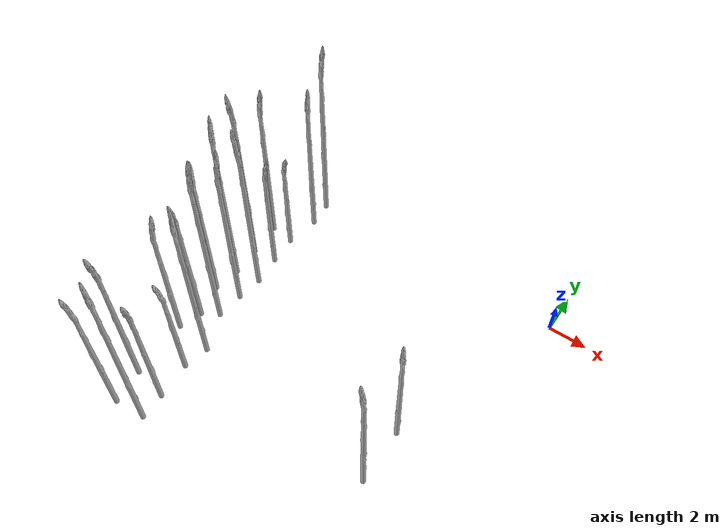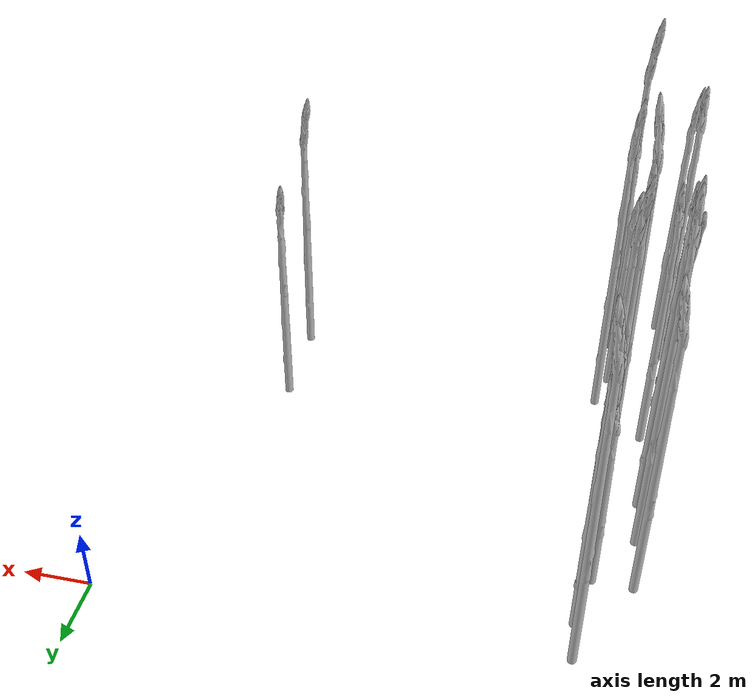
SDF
<sdf version="1.6">
 <world name="default">
  <model name="asparagus_7">
   <pose>-3.28311 -11.7764 0 0 -0 2.80035</pose>
   <static>1</static>
   <link name="asparagus_7">
    <visual name="visual">
     <geometry>
      <mesh><uri>model://Asparagus/meshes/asparagus.obj</uri><scale>0.3 0.3 0.457758</scale></mesh>
     </geometry>
    </visual>
    <collision name="collision">
     <geometry>
      <mesh><uri>model://Asparagus/meshes/asparagus.obj</uri><scale>0.3 0.3 0.457758</scale></mesh>
     </geometry>
    </collision>
   </link>
  </model>
  <model name="asparagus_13">
   <pose>-3.26129 -8.95838 0 0 -0 2.18305</pose>
   <static>1</static>
   <link name="asparagus_13">
    <visual name="visual">
     <geometry>
      <mesh><uri>model://Asparagus/meshes/asparagus.obj</uri><scale>0.3 0.3 0.392294</scale></mesh>
     </geometry>
    </visual>
    <collision name="collision">
     <geometry>
      <mesh><uri>model://Asparagus/meshes/asparagus.obj</uri><scale>0.3 0.3 0.392294</scale></mesh>
     </geometry>
    </collision>
   </link>
  </model>
  <model name="asparagus_120">
   <pose>-15.0527 -15.1448 0 0 -0 -2.54351</pose>
   <static>1</static>
   <link name="asparagus_120">
    <visual name="visual">
     <geometry>
      <mesh><uri>model://Asparagus/meshes/asparagus.obj</uri><scale>0.3 0.3 0.45517</scale></mesh>
     </geometry>
    </visual>
    <collision name="collision">
     <geometry>
      <mesh><uri>model://Asparagus/meshes/asparagus.obj</uri><scale>0.3 0.3 0.45517</scale></mesh>
     </geometry>
    </collision>
   </link>
  </model>
  <model name="asparagus_123">
   <pose>-15.1432 -13.4466 0 0 -0 -1.66534</pose>
   <static>1</static>
   <link name="asparagus_123">
    <visual name="visual">
     <geometry>
      <mesh><uri>model://Asparagus/meshes/asparagus.obj</uri><scale>0.3 0.3 0.494831</scale></mesh>
     </geometry>
    </visual>
    <collision name="collision">
     <geometry>
      <mesh><uri>model://Asparagus/meshes/asparagus.obj</uri><scale>0.3 0.3 0.494831</scale></mesh>
     </geometry>
    </collision>
   </link>
  </model>
  <model name="asparagus_129">
   <pose>-15.1113 -10.233 0 0 -0 1.49439</pose>
   <static>1</static>
   <link name="asparagus_129">
    <visual name="visual">
     <geometry>
      <mesh><uri>model://Asparagus/meshes/asparagus.obj</uri><scale>0.3 0.3 0.440193</scale></mesh>
     </geometry>
    </visual>
    <collision name="collision">
     <geometry>
      <mesh><uri>model://Asparagus/meshes/asparagus.obj</uri><scale>0.3 0.3 0.440193</scale></mesh>
     </geometry>
    </collision>
   </link>
  </model>
  <model name="asparagus_132">
   <pose>-14.708 -9.2576 0 0 -0 -1.35115</pose>
   <static>1</static>
   <link name="asparagus_132">
    <visual name="visual">
     <geometry>
      <mesh><uri>model://Asparagus/meshes/asparagus.obj</uri><scale>0.3 0.3 0.453219</scale></mesh>
     </geometry>
    </visual>
    <collision name="collision">
     <geometry>
      <mesh><uri>model://Asparagus/meshes/asparagus.obj</uri><scale>0.3 0.3 0.453219</scale></mesh>
     </geometry>
    </collision>
   </link>
  </model>
  <model name="asparagus_135">
   <pose>-15.0832 -7.47131 0 0 -0 2.11108</pose>
   <static>1</static>
   <link name="asparagus_135">
    <visual name="visual">
     <geometry>
      <mesh><uri>model://Asparagus/meshes/asparagus.obj</uri><scale>0.3 0.3 0.474741</scale></mesh>
     </geometry>
    </visual>
    <collision name="collision">
     <geometry>
      <mesh><uri>model://Asparagus/meshes/asparagus.obj</uri><scale>0.3 0.3 0.474741</scale></mesh>
     </geometry>
    </collision>
   </link>
  </model>
  <model name="asparagus_138">
   <pose>-14.8041 -6.14032 0 0 -0 2.04514</pose>
   <static>1</static>
   <link name="asparagus_138">
    <visual name="visual">
     <geometry>
      <mesh><uri>model://Asparagus/meshes/asparagus.obj</uri><scale>0.3 0.3 0.561124</scale></mesh>
     </geometry>
    </visual>
    <collision name="collision">
     <geometry>
      <mesh><uri>model://Asparagus/meshes/asparagus.obj</uri><scale>0.3 0.3 0.561124</scale></mesh>
     </geometry>
    </collision>
   </link>
  </model>
  <model name="asparagus_141">
   <pose>-14.7901 -4.79292 0 0 -0 -1.50985</pose>
   <static>1</static>
   <link name="asparagus_141">
    <visual name="visual">
     <geometry>
      <mesh><uri>model://Asparagus/meshes/asparagus.obj</uri><scale>0.3 0.3 0.58045</scale></mesh>
     </geometry>
    </visual>
    <collision name="collision">
     <geometry>
      <mesh><uri>model://Asparagus/meshes/asparagus.obj</uri><scale>0.3 0.3 0.58045</scale></mesh>
     </geometry>
    </collision>
   </link>
  </model>
  <model name="asparagus_144">
   <pose>-14.7579 -3.01169 0 0 -0 -0.193955</pose>
   <static>1</static>
   <link name="asparagus_144">
    <visual name="visual">
     <geometry>
      <mesh><uri>model://Asparagus/meshes/asparagus.obj</uri><scale>0.3 0.3 0.518926</scale></mesh>
     </geometry>
    </visual>
    <collision name="collision">
     <geometry>
      <mesh><uri>model://Asparagus/meshes/asparagus.obj</uri><scale>0.3 0.3 0.518926</scale></mesh>
     </geometry>
    </collision>
   </link>
  </model>
  <model name="asparagus_180">
   <pose>-13.4918 -14.9802 0 0 -0 2.80025</pose>
   <static>1</static>
   <link name="asparagus_180">
    <visual name="visual">
     <geometry>
      <mesh><uri>model://Asparagus/meshes/asparagus.obj</uri><scale>0.3 0.3 0.562413</scale></mesh>
     </geometry>
    </visual>
    <collision name="collision">
     <geometry>
      <mesh><uri>model://Asparagus/meshes/asparagus.obj</uri><scale>0.3 0.3 0.562413</scale></mesh>
     </geometry>
    </collision>
   </link>
  </model>
  <model name="asparagus_183">
   <pose>-13.4129 -13.781 0 0 -0 -1.24276</pose>
   <static>1</static>
   <link name="asparagus_183">
    <visual name="visual">
     <geometry>
      <mesh><uri>model://Asparagus/meshes/asparagus.obj</uri><scale>0.3 0.3 0.423808</scale></mesh>
     </geometry>
    </visual>
    <collision name="collision">
     <geometry>
      <mesh><uri>model://Asparagus/meshes/asparagus.obj</uri><scale>0.3 0.3 0.423808</scale></mesh>
     </geometry>
    </collision>
   </link>
  </model>
  <model name="asparagus_186">
   <pose>-13.5942 -11.8872 0 0 -0 -2.54177</pose>
   <static>1</static>
   <link name="asparagus_186">
    <visual name="visual">
     <geometry>
      <mesh><uri>model://Asparagus/meshes/asparagus.obj</uri><scale>0.3 0.3 0.359842</scale></mesh>
     </geometry>
    </visual>
    <collision name="collision">
     <geometry>
      <mesh><uri>model://Asparagus/meshes/asparagus.obj</uri><scale>0.3 0.3 0.359842</scale></mesh>
     </geometry>
    </collision>
   </link>
  </model>
  <model name="asparagus_189">
   <pose>-13.2394 -10.5237 0 0 -0 2.25238</pose>
   <static>1</static>
   <link name="asparagus_189">
    <visual name="visual">
     <geometry>
      <mesh><uri>model://Asparagus/meshes/asparagus.obj</uri><scale>0.3 0.3 0.542942</scale></mesh>
     </geometry>
    </visual>
    <collision name="collision">
     <geometry>
      <mesh><uri>model://Asparagus/meshes/asparagus.obj</uri><scale>0.3 0.3 0.542942</scale></mesh>
     </geometry>
    </collision>
   </link>
  </model>
  <model name="asparagus_192">
   <pose>-13.7964 -8.70548 0 0 -0 0.0645</pose>
   <static>1</static>
   <link name="asparagus_192">
    <visual name="visual">
     <geometry>
      <mesh><uri>model://Asparagus/meshes/asparagus.obj</uri><scale>0.3 0.3 0.593878</scale></mesh>
     </geometry>
    </visual>
    <collision name="collision">
     <geometry>
      <mesh><uri>model://Asparagus/meshes/asparagus.obj</uri><scale>0.3 0.3 0.593878</scale></mesh>
     </geometry>
    </collision>
   </link>
  </model>
  <model name="asparagus_195">
   <pose>-13.7145 -7.23764 0 0 -0 1.53621</pose>
   <static>1</static>
   <link name="asparagus_195">
    <visual name="visual">
     <geometry>
      <mesh><uri>model://Asparagus/meshes/asparagus.obj</uri><scale>0.3 0.3 0.544801</scale></mesh>
     </geometry>
    </visual>
    <collision name="collision">
     <geometry>
      <mesh><uri>model://Asparagus/meshes/asparagus.obj</uri><scale>0.3 0.3 0.544801</scale></mesh>
     </geometry>
    </collision>
   </link>
  </model>
  <model name="asparagus_198">
   <pose>-13.5771 -6.02015 0 0 -0 2.93052</pose>
   <static>1</static>
   <link name="asparagus_198">
    <visual name="visual">
     <geometry>
      <mesh><uri>model://Asparagus/meshes/asparagus.obj</uri><scale>0.3 0.3 0.554149</scale></mesh>
     </geometry>
    </visual>
    <collision name="collision">
     <geometry>
      <mesh><uri>model://Asparagus/meshes/asparagus.obj</uri><scale>0.3 0.3 0.554149</scale></mesh>
     </geometry>
    </collision>
   </link>
  </model>
  <model name="asparagus_201">
   <pose>-13.5503 -4.5336 0 0 -0 0.078367</pose>
   <static>1</static>
   <link name="asparagus_201">
    <visual name="visual">
     <geometry>
      <mesh><uri>model://Asparagus/meshes/asparagus.obj</uri><scale>0.3 0.3 0.393239</scale></mesh>
     </geometry>
    </visual>
    <collision name="collision">
     <geometry>
      <mesh><uri>model://Asparagus/meshes/asparagus.obj</uri><scale>0.3 0.3 0.393239</scale></mesh>
     </geometry>
    </collision>
   </link>
  </model>
  <model name="asparagus_204">
   <pose>-13.5992 -3.11935 0 0 -0 -0.195555</pose>
   <static>1</static>
   <link name="asparagus_204">
    <visual name="visual">
     <geometry>
      <mesh><uri>model://Asparagus/meshes/asparagus.obj</uri><scale>0.3 0.3 0.336223</scale></mesh>
     </geometry>
    </visual>
    <collision name="collision">
     <geometry>
      <mesh><uri>model://Asparagus/meshes/asparagus.obj</uri><scale>0.3 0.3 0.336223</scale></mesh>
     </geometry>
    </collision>
   </link>
  </model>
  <model name="asparagus_207">
   <pose>-13.3589 -1.37254 0 0 -0 1.95042</pose>
   <static>1</static>
   <link name="asparagus_207">
    <visual name="visual">
     <geometry>
      <mesh><uri>model://Asparagus/meshes/asparagus.obj</uri><scale>0.3 0.3 0.478131</scale></mesh>
     </geometry>
    </visual>
    <collision name="collision">
     <geometry>
      <mesh><uri>model://Asparagus/meshes/asparagus.obj</uri><scale>0.3 0.3 0.478131</scale></mesh>
     </geometry>
    </collision>
   </link>
  </model>
  <model name="asparagus_210">
   <pose>-13.3117 -0.278598 0 0 -0 -0.239105</pose>
   <static>1</static>
   <link name="asparagus_210">
    <visual name="visual">
     <geometry>
      <mesh><uri>model://Asparagus/meshes/asparagus.obj</uri><scale>0.3 0.3 0.575513</scale></mesh>
     </geometry>
    </visual>
    <collision name="collision">
     <geometry>
      <mesh><uri>model://Asparagus/meshes/asparagus.obj</uri><scale>0.3 0.3 0.575513</scale></mesh>
     </geometry>
    </collision>
   </link>
  </model>
 </world>
</sdf>
